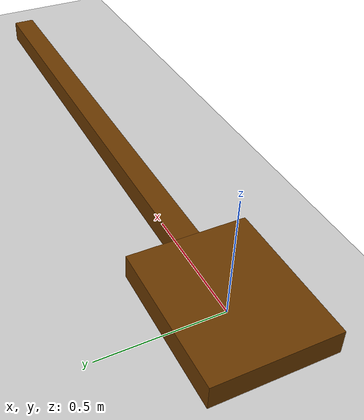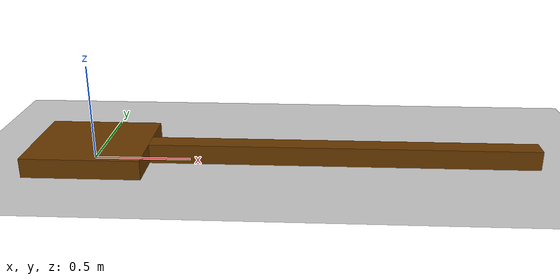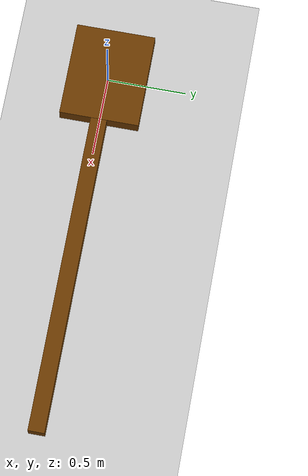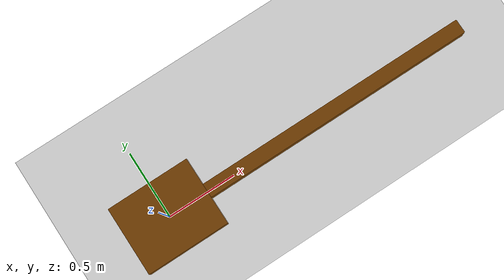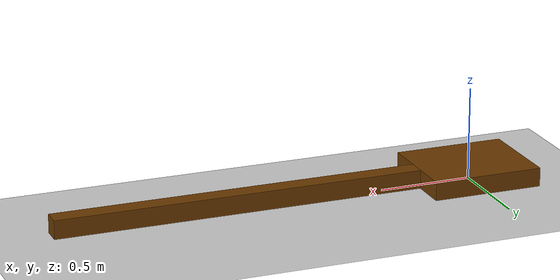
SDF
<?xml version="1.0" ?>
<sdf version="1.5">
    <world name="default">

        <physics type="ode">
        <max_step_size>0.00025</max_step_size>
        <real_time_factor>0.25</real_time_factor>
        <real_time_update_rate>1000</real_time_update_rate>
        <gravity>0 0 -9.81</gravity>
            <ode>
                <solver>
                <type>quick</type>
                <iters>80</iters>
                <sor>1.3</sor>
                </solver>  scene
                <constraints>
                <cfm>0.0</cfm>
                <erp>0.2</erp>
                <contact_max_correcting_vel>0.1</contact_max_correcting_vel>
                <contact_surface_layer>0.0001</contact_surface_layer>
                </constraints>
            </ode>
        </physics>

        <scene>
        <sky>
            <clouds>
                <speed>12</speed>
            </clouds>
        </sky>
        </scene>
        <!-- A global light source -->
        <include>
            <uri>model://sun</uri>
        </include>
        <!-- A ground plane -->
        <include>
            <uri>model://ground_plane</uri>
        </include>
        <!-- environment blocks, obstacles or stairs -->
        <model name="static_environment">
        <static>true</static>
            <link name="static_box">
                <pose>0 0 0.0508 0 0 0</pose>
                <collision name="static_box_collision">
                    <geometry>
                        <box>
                            <size>0.6 0.5 0.1016</size>
                        </box>
                    </geometry>
                </collision>
                <visual name="static_box_visual">
                    <geometry>
                        <box>
                            <size>0.6 0.5 0.1016</size>
                        </box>
                    </geometry>
                    <material>
                        <ambient>0.2 0.2 0.2 1.0</ambient>
                        <diffuse>.421 0.225 0.0 1.0</diffuse>
                    </material>
                </visual>
            </link>
            <link name="beam">
                <pose>1.3 0 0.0508 0 0 0</pose>
                <collision name="static_box_collision">
                    <geometry>
                        <box>
                            <size>2 0.1016 0.1016</size>
                        </box>
                    </geometry>
                </collision>
                <visual name="static_box_visual">
                    <geometry>
                        <box>
                            <size>2 0.1016 0.1016</size>
                        </box>
                    </geometry>
                    <material>
                        <ambient>0.8 0.2 0.8 1.0</ambient>
                        <diffuse>.421 0.225 0.0 1.0</diffuse>
                    </material>
                </visual>
            </link>
        </model>

    </world>
</sdf>
